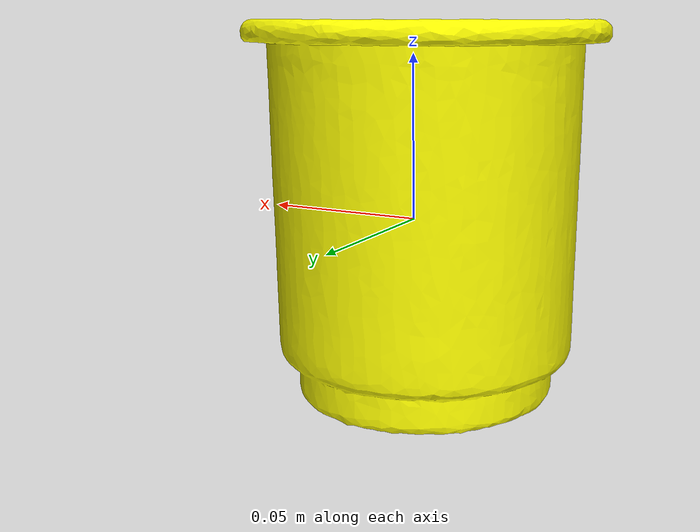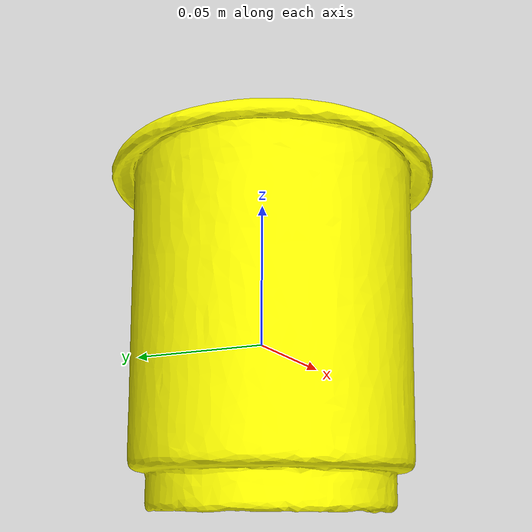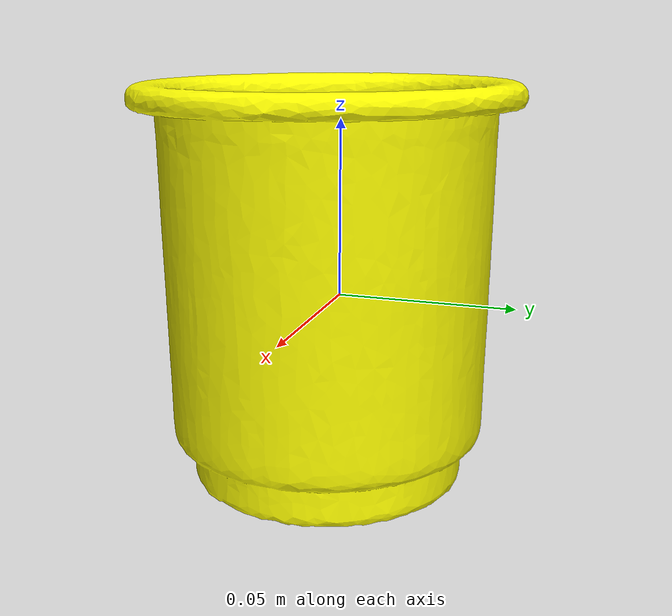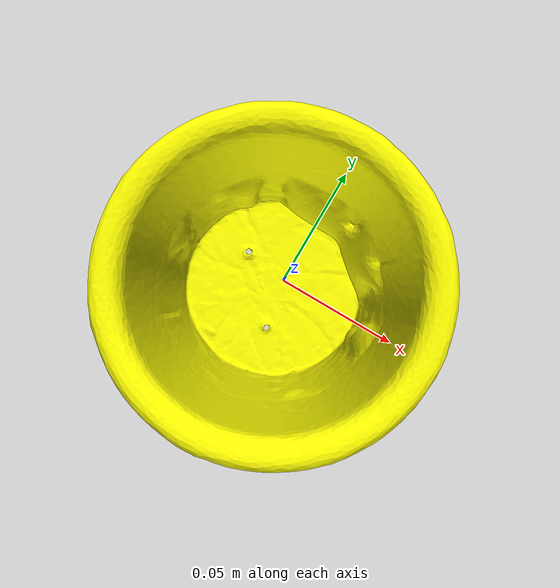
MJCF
<mujoco model="cup_yellow" version="2.2">
  <compiler meshdir="meshes" angle="degree" eulerseq="XYZ"/>
  <asset>
    <mesh name="cupa_mesh" file="cup.stl"/>

    <texture name="cupa_tex" type="2d" builtin="flat"
             rgb1="1 1 0" rgb2="1 1 0" width="512" height="512"/>

    <material name="cupa_mat"
        texture="cupa_tex"
        specular="1"
        shininess="0.3"
        texuniform="true"
        rgba="1 1 0.5 1"/>

  </asset>
  <worldbody>
    <body>
      <body name="object">

      <geom type="mesh"
            mesh="cupa_mesh"
            material="cupa_mat"
            pos="0.04814554 0.09657742 -0.05389455"
            contype="0"
            conaffinity="0"
            group="1"/>

      <geom type="box" size="0.0395 0.002 0.065" pos="0 0.0395 0" rgba="0 0 0 0"
            contype="1" conaffinity="1" density="800" group="0"/>
      <geom type="box" size="0.0395 0.002 0.065" pos="0 -0.0395 0" rgba="0 0 0 0"
            contype="1" conaffinity="1" density="800" group="0"/>
      <geom type="box" size="0.002 0.0395 0.065" pos="0.0395 0 0" rgba="0 0 0 0"
            contype="1" conaffinity="1" density="800" group="0"/>
      <geom type="box" size="0.002 0.0395 0.065" pos="-0.0395 0 0" rgba="0 0 0 0"
            contype="1" conaffinity="1" density="800" group="0"/>

      <geom type="cylinder" size="0.0395 0.002" rgba="0 0 0 0" friction="2.0 0.6 0.1"
            pos="0 0 -0.04145"
            contype="1" conaffinity="1" density="800" group="0"/>

      </body>
      <site name="bottom_site" pos="0 0 -0.05" size="0.005" rgba="0 0 0 0"/>
      <site name="top_site" pos="0 0 0.05" size="0.005" rgba="0 0 0 0"/>
      <site name="horizontal_radius_site" pos="0.08 0 0" size="0.005" rgba="0 0 0 0"/>
    </body>
  </worldbody>
</mujoco>
